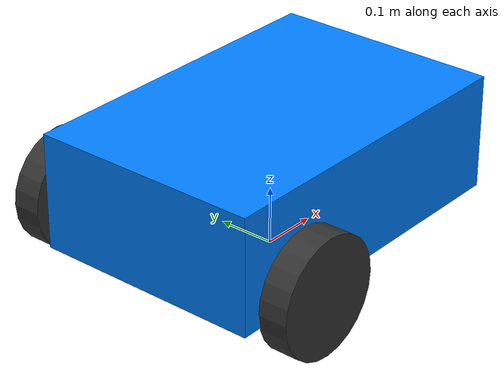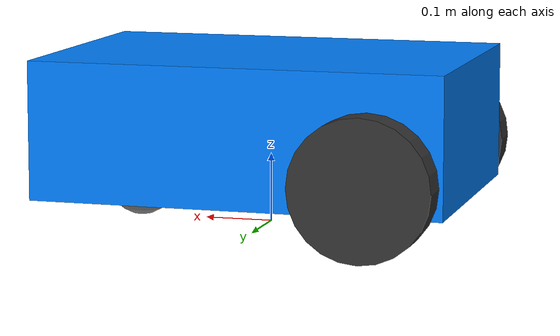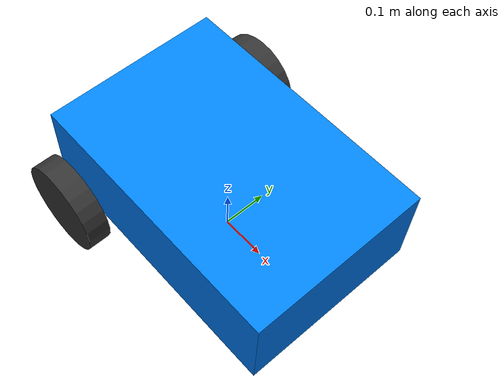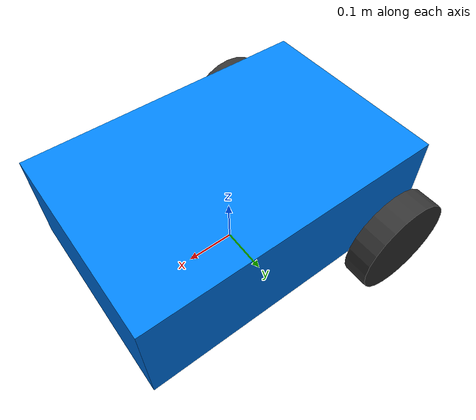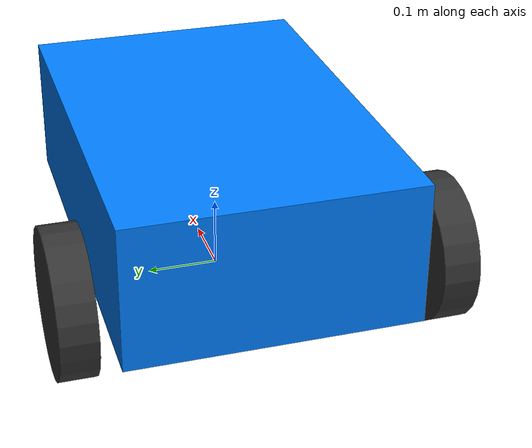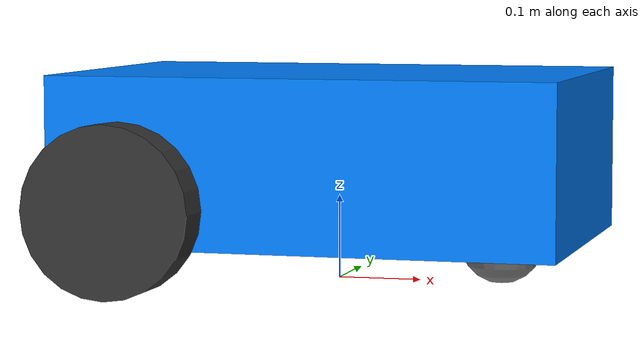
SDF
<?xml version="1.0"?>
<sdf version="1.8">
  <model name="robot">
    <!-- NS-3 Integration: Will be bound via ROS2 service call -->
    <!-- No plugin needed - binding is done programmatically -->

    <!-- Base Link -->
    <link name="base_link">
      <pose>0 0 0.15 0 0 0</pose>
      <inertial>
        <mass>10.0</mass>
        <inertia>
          <ixx>0.1</ixx>
          <iyy>0.1</iyy>
          <izz>0.1</izz>
          <ixy>0</ixy>
          <ixz>0</ixz>
          <iyz>0</iyz>
        </inertia>
      </inertial>

      <visual name="visual">
        <geometry>
          <box>
            <size>0.6 0.4 0.2</size>
          </box>
        </geometry>
        <material>
          <ambient>0.0 0.5 1.0 1</ambient>
          <diffuse>0.0 0.5 1.0 1</diffuse>
          <specular>0.1 0.1 0.1 1</specular>
        </material>
      </visual>

      <collision name="collision">
        <geometry>
          <box>
            <size>0.6 0.4 0.2</size>
          </box>
        </geometry>
      </collision>
    </link>

    <!-- Left Wheel -->
    <link name="left_wheel">
      <pose relative_to="base_link">-0.2 0.25 -0.05 -1.5707 0 0</pose>
      <inertial>
        <mass>1.0</mass>
        <inertia>
          <ixx>0.01</ixx>
          <iyy>0.01</iyy>
          <izz>0.01</izz>
        </inertia>
      </inertial>

      <visual name="visual">
        <geometry>
          <cylinder>
            <radius>0.1</radius>
            <length>0.05</length>
          </cylinder>
        </geometry>
        <material>
          <ambient>0.2 0.2 0.2 1</ambient>
          <diffuse>0.2 0.2 0.2 1</diffuse>
        </material>
      </visual>

      <collision name="collision">
        <geometry>
          <cylinder>
            <radius>0.1</radius>
            <length>0.05</length>
          </cylinder>
        </geometry>
        <surface>
          <friction>
            <ode>
              <mu>1.0</mu>
              <mu2>1.0</mu2>
            </ode>
          </friction>
        </surface>
      </collision>
    </link>

    <!-- Right Wheel -->
    <link name="right_wheel">
      <pose relative_to="base_link">-0.2 -0.25 -0.05 -1.5707 0 0</pose>
      <inertial>
        <mass>1.0</mass>
        <inertia>
          <ixx>0.01</ixx>
          <iyy>0.01</iyy>
          <izz>0.01</izz>
        </inertia>
      </inertial>

      <visual name="visual">
        <geometry>
          <cylinder>
            <radius>0.1</radius>
            <length>0.05</length>
          </cylinder>
        </geometry>
        <material>
          <ambient>0.2 0.2 0.2 1</ambient>
          <diffuse>0.2 0.2 0.2 1</diffuse>
        </material>
      </visual>

      <collision name="collision">
        <geometry>
          <cylinder>
            <radius>0.1</radius>
            <length>0.05</length>
          </cylinder>
        </geometry>
        <surface>
          <friction>
            <ode>
              <mu>1.0</mu>
              <mu2>1.0</mu2>
            </ode>
          </friction>
        </surface>
      </collision>
    </link>

    <!-- Caster Wheel -->
    <link name="caster">
      <pose relative_to="base_link">0.2 0 -0.1 0 0 0</pose>
      <inertial>
        <mass>0.5</mass>
        <inertia>
          <ixx>0.005</ixx>
          <iyy>0.005</iyy>
          <izz>0.005</izz>
        </inertia>
      </inertial>

      <visual name="visual">
        <geometry>
          <sphere>
            <radius>0.05</radius>
          </sphere>
        </geometry>
        <material>
          <ambient>0.5 0.5 0.5 1</ambient>
          <diffuse>0.5 0.5 0.5 1</diffuse>
        </material>
      </visual>

      <collision name="collision">
        <geometry>
          <sphere>
            <radius>0.05</radius>
          </sphere>
        </geometry>
        <surface>
          <friction>
            <ode>
              <mu>0.1</mu>
              <mu2>0.1</mu2>
            </ode>
          </friction>
        </surface>
      </collision>
    </link>

    <!-- Left Wheel Joint -->
    <joint name="left_wheel_joint" type="revolute">
      <parent>base_link</parent>
      <child>left_wheel</child>
      <axis>
        <xyz>0 1 0</xyz>
        <limit>
          <lower>-1.79769e+308</lower>
          <upper>1.79769e+308</upper>
        </limit>
      </axis>
    </joint>

    <!-- Right Wheel Joint -->
    <joint name="right_wheel_joint" type="revolute">
      <parent>base_link</parent>
      <child>right_wheel</child>
      <axis>
        <xyz>0 1 0</xyz>
        <limit>
          <lower>-1.79769e+308</lower>
          <upper>1.79769e+308</upper>
        </limit>
      </axis>
    </joint>

    <!-- Caster Joint -->
    <joint name="caster_wheel" type="ball">
      <parent>base_link</parent>
      <child>caster</child>
    </joint>

    <!-- Differential Drive Plugin -->
    <plugin
      filename="gz-sim-diff-drive-system"
      name="gz::sim::systems::DiffDrive">
      <left_joint>left_wheel_joint</left_joint>
      <right_joint>right_wheel_joint</right_joint>
      <wheel_separation>0.5</wheel_separation>
      <wheel_radius>0.1</wheel_radius>
      <odom_publish_frequency>10</odom_publish_frequency>
      <topic>cmd_vel</topic>
    </plugin>

  </model>
</sdf>
